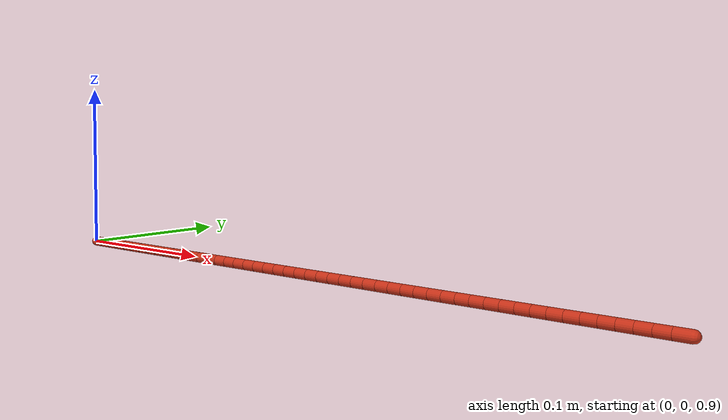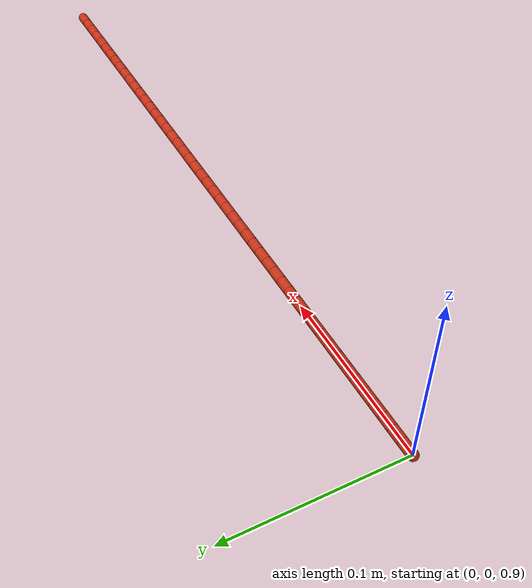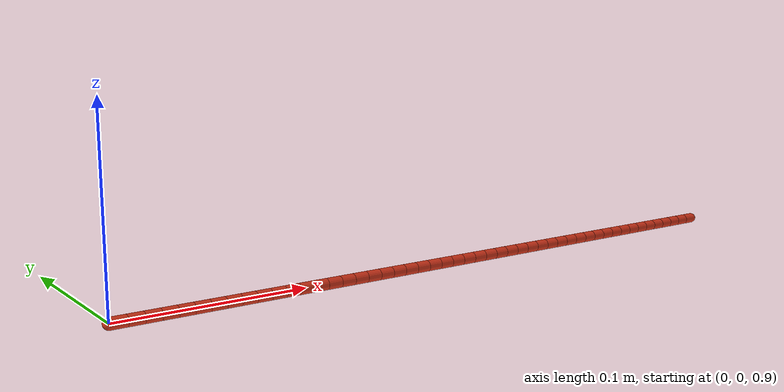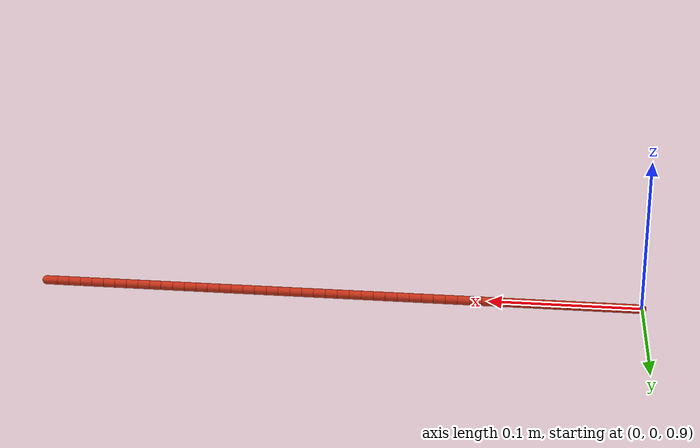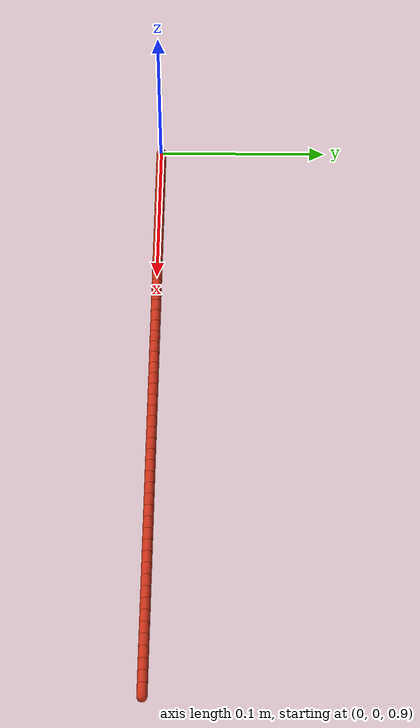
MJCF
<mujoco model="Cable">
  <compiler angle="radian" autolimits="true"/>
  <size memory="8M"/>
  <statistic meansize="0.0147059" extent="0.407" center="0.2 0 0.5965"/>
  <custom>
    <text name="composite_" data="rope_"/>
  </custom>
  <worldbody>
    <body name="cable0" pos="0 0 0.9">
      <joint type="free"/>
      <body name="B_first">
        <geom name="G0" size="0.003 0.004" pos="0.004 0 0" quat="0.707107 0 -0.707107 0" type="capsule" condim="1" rgba="0.8 0.2 0.1 1"/>
        <site name="S_first" pos="0 0 0" group="3"/>
        <body name="B_1" pos="0.008 0 0">
          <joint name="J_1" pos="0 0 0" type="ball" group="3" stiffness="0.03" damping="0.015"/>
          <geom name="G1" size="0.003 0.004" pos="0.004 0 0" quat="0.707107 0 -0.707107 0" type="capsule" condim="1" rgba="0.8 0.2 0.1 1"/>
          <body name="B_2" pos="0.008 0 0">
            <joint name="J_2" pos="0 0 0" type="ball" group="3" stiffness="0.03" damping="0.015"/>
            <geom name="G2" size="0.003 0.004" pos="0.004 0 0" quat="0.707107 0 -0.707107 0" type="capsule" condim="1" rgba="0.8 0.2 0.1 1"/>
            <body name="B_3" pos="0.008 0 0">
              <joint name="J_3" pos="0 0 0" type="ball" group="3" stiffness="0.03" damping="0.015"/>
              <geom name="G3" size="0.003 0.004" pos="0.004 0 0" quat="0.707107 0 -0.707107 0" type="capsule" condim="1" rgba="0.8 0.2 0.1 1"/>
              <body name="B_4" pos="0.008 0 0">
                <joint name="J_4" pos="0 0 0" type="ball" group="3" stiffness="0.03" damping="0.015"/>
                <geom name="G4" size="0.003 0.004" pos="0.004 0 0" quat="0.707107 0 -0.707107 0" type="capsule" condim="1" rgba="0.8 0.2 0.1 1"/>
                <body name="B_5" pos="0.008 0 0">
                  <joint name="J_5" pos="0 0 0" type="ball" group="3" stiffness="0.03" damping="0.015"/>
                  <geom name="G5" size="0.003 0.004" pos="0.004 0 0" quat="0.707107 0 -0.707107 0" type="capsule" condim="1" rgba="0.8 0.2 0.1 1"/>
                  <body name="B_6" pos="0.008 0 0">
                    <joint name="J_6" pos="0 0 0" type="ball" group="3" stiffness="0.03" damping="0.015"/>
                    <geom name="G6" size="0.003 0.004" pos="0.004 0 0" quat="0.707107 0 -0.707107 0" type="capsule" condim="1" rgba="0.8 0.2 0.1 1"/>
                    <body name="B_7" pos="0.008 0 0">
                      <joint name="J_7" pos="0 0 0" type="ball" group="3" stiffness="0.03" damping="0.015"/>
                      <geom name="G7" size="0.003 0.004" pos="0.004 0 0" quat="0.707107 0 -0.707107 0" type="capsule" condim="1" rgba="0.8 0.2 0.1 1"/>
                      <body name="B_8" pos="0.00799999 0 0">
                        <joint name="J_8" pos="0 0 0" type="ball" group="3" stiffness="0.03" damping="0.015"/>
                        <geom name="G8" size="0.003 0.004" pos="0.004 0 0" quat="0.707107 0 -0.707107 0" type="capsule" condim="1" rgba="0.8 0.2 0.1 1"/>
                        <body name="B_9" pos="0.008 0 0">
                          <joint name="J_9" pos="0 0 0" type="ball" group="3" stiffness="0.03" damping="0.015"/>
                          <geom name="G9" size="0.003 0.004" pos="0.004 0 0" quat="0.707107 0 -0.707107 0" type="capsule" condim="1" rgba="0.8 0.2 0.1 1"/>
                          <body name="B_10" pos="0.008 0 0">
                            <joint name="J_10" pos="0 0 0" type="ball" group="3" stiffness="0.03" damping="0.015"/>
                            <geom name="G10" size="0.003 0.004" pos="0.004 0 0" quat="0.707107 0 -0.707107 0" type="capsule" condim="1" rgba="0.8 0.2 0.1 1"/>
                            <body name="B_11" pos="0.008 0 0">
                              <joint name="J_11" pos="0 0 0" type="ball" group="3" stiffness="0.03" damping="0.015"/>
                              <geom name="G11" size="0.003 0.004" pos="0.004 0 0" quat="0.707107 0 -0.707107 0" type="capsule" condim="1" rgba="0.8 0.2 0.1 1"/>
                              <body name="B_12" pos="0.008 0 0">
                                <joint name="J_12" pos="0 0 0" type="ball" group="3" stiffness="0.03" damping="0.015"/>
                                <geom name="G12" size="0.003 0.004" pos="0.004 0 0" quat="0.707107 0 -0.707107 0" type="capsule" condim="1" rgba="0.8 0.2 0.1 1"/>
                                <body name="B_13" pos="0.008 0 0">
                                  <joint name="J_13" pos="0 0 0" type="ball" group="3" stiffness="0.03" damping="0.015"/>
                                  <geom name="G13" size="0.003 0.004" pos="0.004 0 0" quat="0.707107 0 -0.707107 0" type="capsule" condim="1" rgba="0.8 0.2 0.1 1"/>
                                  <body name="B_14" pos="0.00799999 0 0">
                                    <joint name="J_14" pos="0 0 0" type="ball" group="3" stiffness="0.03" damping="0.015"/>
                                    <geom name="G14" size="0.003 0.004" pos="0.004 0 0" quat="0.707107 0 -0.707107 0" type="capsule" condim="1" rgba="0.8 0.2 0.1 1"/>
                                    <body name="B_15" pos="0.00800001 0 0">
                                      <joint name="J_15" pos="0 0 0" type="ball" group="3" stiffness="0.03" damping="0.015"/>
                                      <geom name="G15" size="0.003 0.004" pos="0.004 0 0" quat="0.707107 0 -0.707107 0" type="capsule" condim="1" rgba="0.8 0.2 0.1 1"/>
                                      <body name="B_16" pos="0.008 0 0">
                                        <joint name="J_16" pos="0 0 0" type="ball" group="3" stiffness="0.03" damping="0.015"/>
                                        <geom name="G16" size="0.003 0.004" pos="0.004 0 0" quat="0.707107 0 -0.707107 0" type="capsule" condim="1" rgba="0.8 0.2 0.1 1"/>
                                        <body name="B_17" pos="0.00799999 0 0">
                                          <joint name="J_17" pos="0 0 0" type="ball" group="3" stiffness="0.03" damping="0.015"/>
                                          <geom name="G17" size="0.003 0.00399999" pos="0.00399999 0 0" quat="0.707107 0 -0.707107 0" type="capsule" condim="1" rgba="0.8 0.2 0.1 1"/>
                                          <body name="B_18" pos="0.008 0 0">
                                            <joint name="J_18" pos="0 0 0" type="ball" group="3" stiffness="0.03" damping="0.015"/>
                                            <geom name="G18" size="0.003 0.004" pos="0.004 0 0" quat="0.707107 0 -0.707107 0" type="capsule" condim="1" rgba="0.8 0.2 0.1 1"/>
                                            <body name="B_19" pos="0.008 0 0">
                                              <joint name="J_19" pos="0 0 0" type="ball" group="3" stiffness="0.03" damping="0.015"/>
                                              <geom name="G19" size="0.003 0.004" pos="0.004 0 0" quat="0.707107 0 -0.707107 0" type="capsule" condim="1" rgba="0.8 0.2 0.1 1"/>
                                              <body name="B_20" pos="0.008 0 0">
                                                <joint name="J_20" pos="0 0 0" type="ball" group="3" stiffness="0.03" damping="0.015"/>
                                                <geom name="G20" size="0.003 0.004" pos="0.004 0 0" quat="0.707107 0 -0.707107 0" type="capsule" condim="1" rgba="0.8 0.2 0.1 1"/>
                                                <body name="B_21" pos="0.008 0 0">
                                                  <joint name="J_21" pos="0 0 0" type="ball" group="3" stiffness="0.03" damping="0.015"/>
                                                  <geom name="G21" size="0.003 0.004" pos="0.004 0 0" quat="0.707107 0 -0.707107 0" type="capsule" condim="1" rgba="0.8 0.2 0.1 1"/>
                                                  <body name="B_22" pos="0.008 0 0">
                                                    <joint name="J_22" pos="0 0 0" type="ball" group="3" stiffness="0.03" damping="0.015"/>
                                                    <geom name="G22" size="0.003 0.004" pos="0.004 0 0" quat="0.707107 0 -0.707107 0" type="capsule" condim="1" rgba="0.8 0.2 0.1 1"/>
                                                    <body name="B_23" pos="0.008 0 0">
                                                      <joint name="J_23" pos="0 0 0" type="ball" group="3" stiffness="0.03" damping="0.015"/>
                                                      <geom name="G23" size="0.003 0.004" pos="0.004 0 0" quat="0.707107 0 -0.707107 0" type="capsule" condim="1" rgba="0.8 0.2 0.1 1"/>
                                                      <body name="B_24" pos="0.008 0 0">
                                                        <joint name="J_24" pos="0 0 0" type="ball" group="3" stiffness="0.03" damping="0.015"/>
                                                        <geom name="G24" size="0.003 0.004" pos="0.004 0 0" quat="0.707107 0 -0.707107 0" type="capsule" condim="1" rgba="0.8 0.2 0.1 1"/>
                                                        <body name="B_25" pos="0.008 0 0">
                                                          <joint name="J_25" pos="0 0 0" type="ball" group="3" stiffness="0.03" damping="0.015"/>
                                                          <geom name="G25" size="0.003 0.004" pos="0.004 0 0" quat="0.707107 0 -0.707107 0" type="capsule" condim="1" rgba="0.8 0.2 0.1 1"/>
                                                          <body name="B_26" pos="0.008 0 0">
                                                            <joint name="J_26" pos="0 0 0" type="ball" group="3" stiffness="0.03" damping="0.015"/>
                                                            <geom name="G26" size="0.003 0.004" pos="0.004 0 0" quat="0.707107 0 -0.707107 0" type="capsule" condim="1" rgba="0.8 0.2 0.1 1"/>
                                                            <body name="B_27" pos="0.008 0 0">
                                                              <joint name="J_27" pos="0 0 0" type="ball" group="3" stiffness="0.03" damping="0.015"/>
                                                              <geom name="G27" size="0.003 0.004" pos="0.004 0 0" quat="0.707107 0 -0.707107 0" type="capsule" condim="1" rgba="0.8 0.2 0.1 1"/>
                                                              <body name="B_28" pos="0.00799999 0 0">
                                                                <joint name="J_28" pos="0 0 0" type="ball" group="3" stiffness="0.03" damping="0.015"/>
                                                                <geom name="G28" size="0.003 0.00399999" pos="0.00399999 0 0" quat="0.707107 0 -0.707107 0" type="capsule" condim="1" rgba="0.8 0.2 0.1 1"/>
                                                                <body name="B_29" pos="0.008 0 0">
                                                                  <joint name="J_29" pos="0 0 0" type="ball" group="3" stiffness="0.03" damping="0.015"/>
                                                                  <geom name="G29" size="0.003 0.004" pos="0.004 0 0" quat="0.707107 0 -0.707107 0" type="capsule" condim="1" rgba="0.8 0.2 0.1 1"/>
                                                                  <body name="B_30" pos="0.008 0 0">
                                                                    <joint name="J_30" pos="0 0 0" type="ball" group="3" stiffness="0.03" damping="0.015"/>
                                                                    <geom name="G30" size="0.003 0.004" pos="0.004 0 0" quat="0.707107 0 -0.707107 0" type="capsule" condim="1" rgba="0.8 0.2 0.1 1"/>
                                                                    <body name="B_31" pos="0.00800002 0 0">
                                                                      <joint name="J_31" pos="0 0 0" type="ball" group="3" stiffness="0.03" damping="0.015"/>
                                                                      <geom name="G31" size="0.003 0.00400001" pos="0.00400001 0 0" quat="0.707107 0 -0.707107 0" type="capsule" condim="1" rgba="0.8 0.2 0.1 1"/>
                                                                      <body name="B_32" pos="0.00799999 0 0">
                                                                        <joint name="J_32" pos="0 0 0" type="ball" group="3" stiffness="0.03" damping="0.015"/>
                                                                        <geom name="G32" size="0.003 0.00399999" pos="0.00399999 0 0" quat="0.707107 0 -0.707107 0" type="capsule" condim="1" rgba="0.8 0.2 0.1 1"/>
                                                                        <body name="B_33" pos="0.00800002 0 0">
                                                                          <joint name="J_33" pos="0 0 0" type="ball" group="3" stiffness="0.03" damping="0.015"/>
                                                                          <geom name="G33" size="0.003 0.00400001" pos="0.00400001 0 0" quat="0.707107 0 -0.707107 0" type="capsule" condim="1" rgba="0.8 0.2 0.1 1"/>
                                                                          <body name="B_34" pos="0.00799999 0 0">
                                                                            <joint name="J_34" pos="0 0 0" type="ball" group="3" stiffness="0.03" damping="0.015"/>
                                                                            <geom name="G34" size="0.003 0.00399999" pos="0.00399999 0 0" quat="0.707107 0 -0.707107 0" type="capsule" condim="1" rgba="0.8 0.2 0.1 1"/>
                                                                            <body name="B_35" pos="0.00799999 0 0">
                                                                              <joint name="J_35" pos="0 0 0" type="ball" group="3" stiffness="0.03" damping="0.015"/>
                                                                              <geom name="G35" size="0.003 0.00399999" pos="0.00399999 0 0" quat="0.707107 0 -0.707107 0" type="capsule" condim="1" rgba="0.8 0.2 0.1 1"/>
                                                                              <body name="B_36" pos="0.00800002 0 0">
                                                                                <joint name="J_36" pos="0 0 0" type="ball" group="3" stiffness="0.03" damping="0.015"/>
                                                                                <geom name="G36" size="0.003 0.00400001" pos="0.00400001 0 0" quat="0.707107 0 -0.707107 0" type="capsule" condim="1" rgba="0.8 0.2 0.1 1"/>
                                                                                <body name="B_37" pos="0.00799999 0 0">
                                                                                  <joint name="J_37" pos="0 0 0" type="ball" group="3" stiffness="0.03" damping="0.015"/>
                                                                                  <geom name="G37" size="0.003 0.00399999" pos="0.00399999 0 0" quat="0.707107 0 -0.707107 0" type="capsule" condim="1" rgba="0.8 0.2 0.1 1"/>
                                                                                  <body name="B_38" pos="0.00800002 0 0">
                                                                                    <joint name="J_38" pos="0 0 0" type="ball" group="3" stiffness="0.03" damping="0.015"/>
                                                                                    <geom name="G38" size="0.003 0.00400001" pos="0.00400001 0 0" quat="0.707107 0 -0.707107 0" type="capsule" condim="1" rgba="0.8 0.2 0.1 1"/>
                                                                                    <body name="B_39" pos="0.00799999 0 0">
                                                                                      <joint name="J_39" pos="0 0 0" type="ball" group="3" stiffness="0.03" damping="0.015"/>
                                                                                      <geom name="G39" size="0.003 0.00399999" pos="0.00399999 0 0" quat="0.707107 0 -0.707107 0" type="capsule" condim="1" rgba="0.8 0.2 0.1 1"/>
                                                                                      <body name="B_40" pos="0.00800002 0 0">
                                                                                        <joint name="J_40" pos="0 0 0" type="ball" group="3" stiffness="0.03" damping="0.015"/>
                                                                                        <geom name="G40" size="0.003 0.00400001" pos="0.00400001 0 0" quat="0.707107 0 -0.707107 0" type="capsule" condim="1" rgba="0.8 0.2 0.1 1"/>
                                                                                        <body name="B_41" pos="0.00799999 0 0">
                                                                                          <joint name="J_41" pos="0 0 0" type="ball" group="3" stiffness="0.03" damping="0.015"/>
                                                                                          <geom name="G41" size="0.003 0.00399999" pos="0.00399999 0 0" quat="0.707107 0 -0.707107 0" type="capsule" condim="1" rgba="0.8 0.2 0.1 1"/>
                                                                                          <body name="B_42" pos="0.00800002 0 0">
                                                                                            <joint name="J_42" pos="0 0 0" type="ball" group="3" stiffness="0.03" damping="0.015"/>
                                                                                            <geom name="G42" size="0.003 0.00400001" pos="0.00400001 0 0" quat="0.707107 0 -0.707107 0" type="capsule" condim="1" rgba="0.8 0.2 0.1 1"/>
                                                                                            <body name="B_43" pos="0.00799999 0 0">
                                                                                              <joint name="J_43" pos="0 0 0" type="ball" group="3" stiffness="0.03" damping="0.015"/>
                                                                                              <geom name="G43" size="0.003 0.00399999" pos="0.00399999 0 0" quat="0.707107 0 -0.707107 0" type="capsule" condim="1" rgba="0.8 0.2 0.1 1"/>
                                                                                              <body name="B_44" pos="0.00800002 0 0">
                                                                                                <joint name="J_44" pos="0 0 0" type="ball" group="3" stiffness="0.03" damping="0.015"/>
                                                                                                <geom name="G44" size="0.003 0.00400001" pos="0.00400001 0 0" quat="0.707107 0 -0.707107 0" type="capsule" condim="1" rgba="0.8 0.2 0.1 1"/>
                                                                                                <body name="B_45" pos="0.00799999 0 0">
                                                                                                  <joint name="J_45" pos="0 0 0" type="ball" group="3" stiffness="0.03" damping="0.015"/>
                                                                                                  <geom name="G45" size="0.003 0.00399999" pos="0.00399999 0 0" quat="0.707107 0 -0.707107 0" type="capsule" condim="1" rgba="0.8 0.2 0.1 1"/>
                                                                                                  <body name="B_46" pos="0.00799999 0 0">
                                                                                                    <joint name="J_46" pos="0 0 0" type="ball" group="3" stiffness="0.03" damping="0.015"/>
                                                                                                    <geom name="G46" size="0.003 0.00399999" pos="0.00399999 0 0" quat="0.707107 0 -0.707107 0" type="capsule" condim="1" rgba="0.8 0.2 0.1 1"/>
                                                                                                    <body name="B_47" pos="0.00800002 0 0">
                                                                                                      <joint name="J_47" pos="0 0 0" type="ball" group="3" stiffness="0.03" damping="0.015"/>
                                                                                                      <geom name="G47" size="0.003 0.00400001" pos="0.00400001 0 0" quat="0.707107 0 -0.707107 0" type="capsule" condim="1" rgba="0.8 0.2 0.1 1"/>
                                                                                                      <body name="B_48" pos="0.00799999 0 0">
                                                                                                        <joint name="J_48" pos="0 0 0" type="ball" group="3" stiffness="0.03" damping="0.015"/>
                                                                                                        <geom name="G48" size="0.003 0.00399999" pos="0.00399999 0 0" quat="0.707107 0 -0.707107 0" type="capsule" condim="1" rgba="0.8 0.2 0.1 1"/>
                                                                                                        <body name="B_last" pos="0.00800002 0 0">
                                                                                                          <joint name="J_last" pos="0 0 0" type="ball" group="3" stiffness="0.03" damping="0.015"/>
                                                                                                          <geom name="G49" size="0.003 0.00400001" pos="0.00400001 0 0" quat="0.707107 0 -0.707107 0" type="capsule" condim="1" rgba="0.8 0.2 0.1 1"/>
                                                                                                          <site name="S_last" pos="0.00800002 0 0" group="3"/>
                                                                                                        </body>
                                                                                                      </body>
                                                                                                    </body>
                                                                                                  </body>
                                                                                                </body>
                                                                                              </body>
                                                                                            </body>
                                                                                          </body>
                                                                                        </body>
                                                                                      </body>
                                                                                    </body>
                                                                                  </body>
                                                                                </body>
                                                                              </body>
                                                                            </body>
                                                                          </body>
                                                                        </body>
                                                                      </body>
                                                                    </body>
                                                                  </body>
                                                                </body>
                                                              </body>
                                                            </body>
                                                          </body>
                                                        </body>
                                                      </body>
                                                    </body>
                                                  </body>
                                                </body>
                                              </body>
                                            </body>
                                          </body>
                                        </body>
                                      </body>
                                    </body>
                                  </body>
                                </body>
                              </body>
                            </body>
                          </body>
                        </body>
                      </body>
                    </body>
                  </body>
                </body>
              </body>
            </body>
          </body>
        </body>
      </body>
    </body>
  </worldbody>
  <contact>
    <exclude body1="B_first" body2="B_1"/>
    <exclude body1="B_1" body2="B_2"/>
    <exclude body1="B_2" body2="B_3"/>
    <exclude body1="B_3" body2="B_4"/>
    <exclude body1="B_4" body2="B_5"/>
    <exclude body1="B_5" body2="B_6"/>
    <exclude body1="B_6" body2="B_7"/>
    <exclude body1="B_7" body2="B_8"/>
    <exclude body1="B_8" body2="B_9"/>
    <exclude body1="B_9" body2="B_10"/>
    <exclude body1="B_10" body2="B_11"/>
    <exclude body1="B_11" body2="B_12"/>
    <exclude body1="B_12" body2="B_13"/>
    <exclude body1="B_13" body2="B_14"/>
    <exclude body1="B_14" body2="B_15"/>
    <exclude body1="B_15" body2="B_16"/>
    <exclude body1="B_16" body2="B_17"/>
    <exclude body1="B_17" body2="B_18"/>
    <exclude body1="B_18" body2="B_19"/>
    <exclude body1="B_19" body2="B_20"/>
    <exclude body1="B_20" body2="B_21"/>
    <exclude body1="B_21" body2="B_22"/>
    <exclude body1="B_22" body2="B_23"/>
    <exclude body1="B_23" body2="B_24"/>
    <exclude body1="B_24" body2="B_25"/>
    <exclude body1="B_25" body2="B_26"/>
    <exclude body1="B_26" body2="B_27"/>
    <exclude body1="B_27" body2="B_28"/>
    <exclude body1="B_28" body2="B_29"/>
    <exclude body1="B_29" body2="B_30"/>
    <exclude body1="B_30" body2="B_31"/>
    <exclude body1="B_31" body2="B_32"/>
    <exclude body1="B_32" body2="B_33"/>
    <exclude body1="B_33" body2="B_34"/>
    <exclude body1="B_34" body2="B_35"/>
    <exclude body1="B_35" body2="B_36"/>
    <exclude body1="B_36" body2="B_37"/>
    <exclude body1="B_37" body2="B_38"/>
    <exclude body1="B_38" body2="B_39"/>
    <exclude body1="B_39" body2="B_40"/>
    <exclude body1="B_40" body2="B_41"/>
    <exclude body1="B_41" body2="B_42"/>
    <exclude body1="B_42" body2="B_43"/>
    <exclude body1="B_43" body2="B_44"/>
    <exclude body1="B_44" body2="B_45"/>
    <exclude body1="B_45" body2="B_46"/>
    <exclude body1="B_46" body2="B_47"/>
    <exclude body1="B_47" body2="B_48"/>
    <exclude body1="B_48" body2="B_last"/>
  </contact>
</mujoco>
